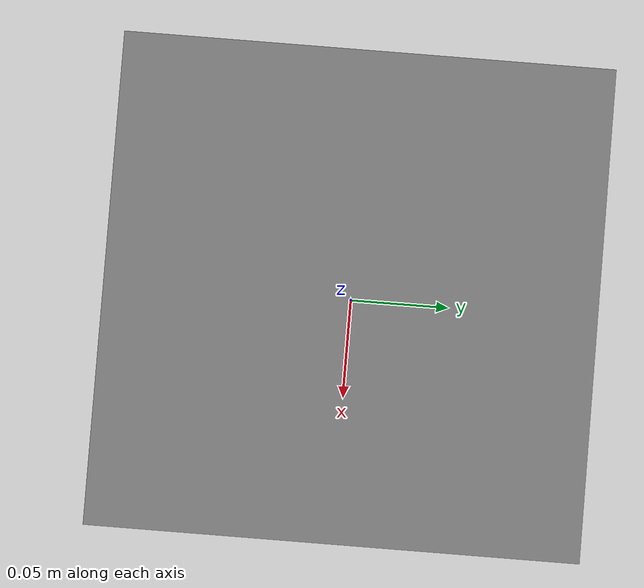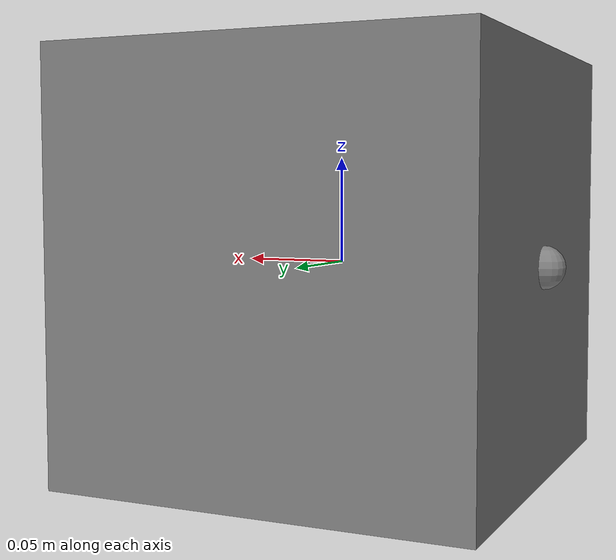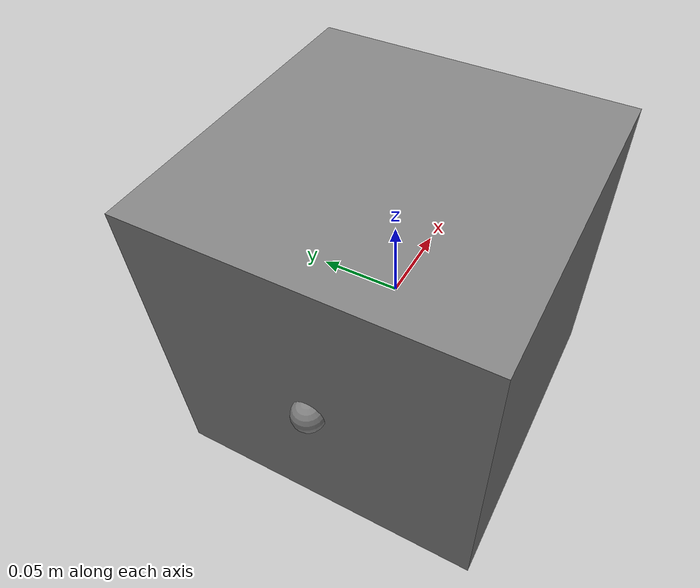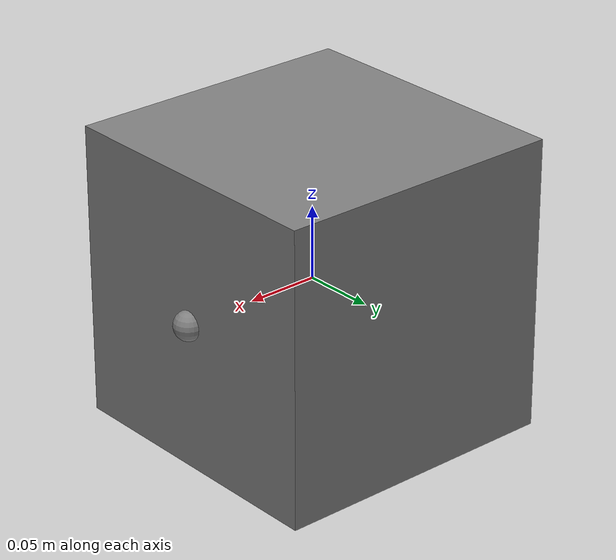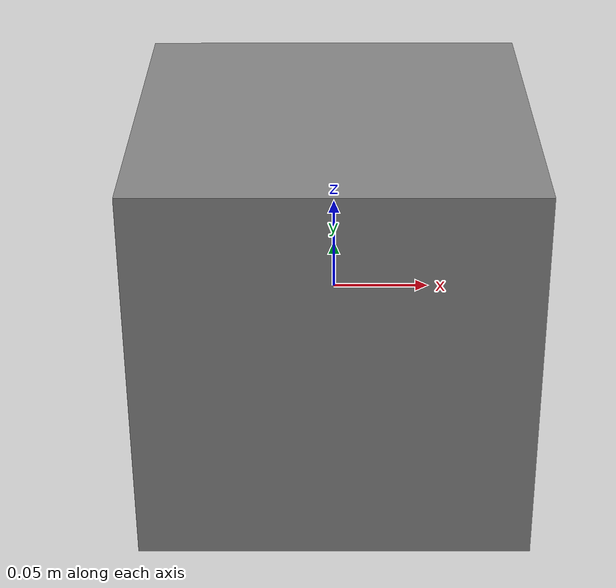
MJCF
<mujoco model="space_cube">
    <option gravity="0 0 0"/> <!-- Sets gravity to zero to simulate space -->
    <asset>
        <!-- Define any textures, materials, or meshes here -->
    </asset>

    <worldbody>
        <body name="cube" pos="0 0 0" euler="0 0 0">
            <freejoint/>
            <geom type="box" size="0.1 0.1 0.1" mass="1"/> <!-- Defines the cube -->
            <site name="thruster_site0" pos="0.1 0 0" size="0.01"/> <!-- Position for thruster action -->
            <site name="thruster_site1" pos="-0.1 0 0" size="0.01"/> <!-- Position for thruster action -->
        </body>
    </worldbody>

    <actuator>
        <general name="thruster0"
                 site="thruster_site0"
                 gear="-1 0 0"
                 forcerange="0 1"
                 ctrlrange="0 1"
                 forcelimited="true"
        />
        <general name="thruster1"
                 site="thruster_site1"
                 gear="1 0 0"
                 forcerange="0 1"
                 ctrlrange="0 1"
                 forcelimited="true"
        />
    </actuator>
</mujoco>
